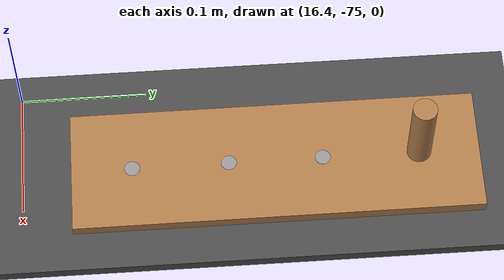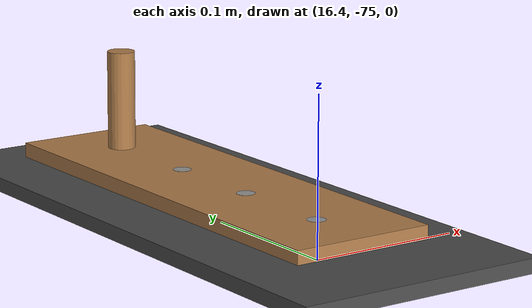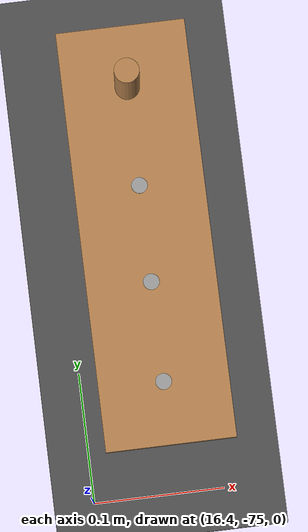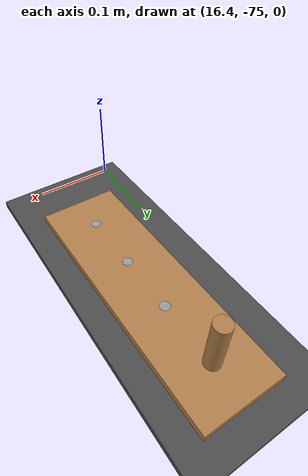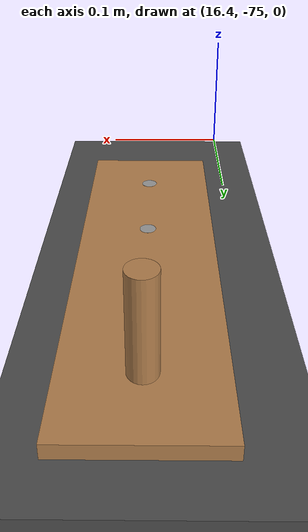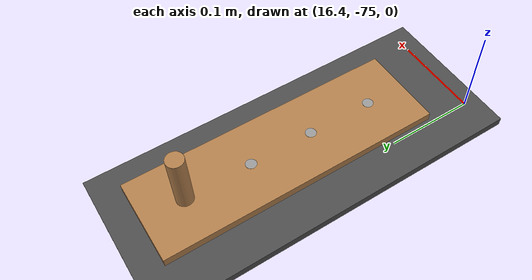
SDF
<sdf version="1.6">
 <world name="default">
  <model name="asphalt_plane">
   <static>1</static>
   <pose>1.29754 -0.433466 -0.02 0 -0 0</pose>
   <link name="link">
    <collision name="collision"><geometry><box><size>300 200 0.01</size></box></geometry></collision>
    <visual name="visual">
     <cast_shadows>0</cast_shadows>
     <geometry><box><size>300 200 0.01</size></box></geometry>
     <material>
      <script>
       <uri>model://asphalt_plane/materials/scripts</uri>
       <uri>model://asphalt_plane/materials/textures</uri>
       <name>vrc/asphalt</name>
      </script>
     </material>
    </visual>
   </link>
  </model>
  <model name="wooden_peg_board">
   <link name="wooden_board::base">
    <pose>0 0 0.00523 0 -0 0</pose>
    <inertial>
     <mass>0.2765</mass>
     <inertia>
      <ixx>0.0025148</ixx>
      <ixy>0</ixy>
      <ixz>0</ixz>
      <iyy>0.00024037</iyy>
      <iyz>0</iyz>
      <izz>0.00275013</izz>
     </inertia>
    </inertial>
    <collision name="collision">
     <geometry><box><size>0.1016 0.3302 0.01046</size></box></geometry>
     <surface>
      <contact>
       <poissons_ratio>0.347</poissons_ratio>
       <elastic_modulus>8.8e+09</elastic_modulus>
       <ode><kp>100000</kp><kd>100</kd><max_vel>100</max_vel><min_depth>0.001</min_depth></ode>
      </contact>
      <friction>
       <torsional>
        <coefficient>1</coefficient>
        <use_patch_radius>0</use_patch_radius>
        <surface_radius>0.01</surface_radius>
       </torsional>
      </friction>
     </surface>
    </collision>
    <visual name="visual">
     <geometry><box><size>0.1016 0.3302 0.01046</size></box></geometry>
     <material>
      <script><uri>file://media/materials/scripts/gazebo.material</uri><name>Gazebo/Wood</name></script>
     </material>
    </visual>
    <visual name="tee_nut_1">
     <pose>0 -0.116 0 0 -0 0</pose>
     <geometry><cylinder><radius>0.00635</radius><length>0.0105646</length></cylinder></geometry>
     <material>
      <script><uri>file://media/materials/scripts/gazebo.material</uri><name>Gazebo/Grey</name></script>
     </material>
    </visual>
    <visual name="tee_nut_2">
     <pose>0 -0.038 0 0 -0 0</pose>
     <geometry><cylinder><radius>0.00635</radius><length>0.0105646</length></cylinder></geometry>
     <material>
      <script><uri>file://media/materials/scripts/gazebo.material</uri><name>Gazebo/Grey</name></script>
     </material>
    </visual>
    <visual name="tee_nut_3">
     <pose>0 0.038 0 0 -0 0</pose>
     <geometry><cylinder><radius>0.00635</radius><length>0.0105646</length></cylinder></geometry>
     <material>
      <script><uri>file://media/materials/scripts/gazebo.material</uri><name>Gazebo/Grey</name></script>
     </material>
    </visual>
    <visual name="tee_nut_4">
     <pose>0 0.116 0 0 -0 0</pose>
     <geometry><cylinder><radius>0.00635</radius><length>0.0105646</length></cylinder></geometry>
     <material>
      <script><uri>file://media/materials/scripts/gazebo.material</uri><name>Gazebo/Grey</name></script>
     </material>
    </visual>
   </link>
   <link name="peg::link">
    <pose>0 0.116 0.04 0 -0 0</pose>
    <inertial>
     <mass>0.0175</mass>
     <inertia>
      <ixx>9.74923e-06</ixx>
      <ixy>0</ixy>
      <ixz>0</ixz>
      <iyy>9.74923e-06</iyy>
      <iyz>0</iyz>
      <izz>8.31797e-07</izz>
     </inertia>
    </inertial>
    <collision name="collision">
     <geometry><cylinder><radius>0.00975</radius><length>0.08</length></cylinder></geometry>
     <surface>
      <contact>
       <poissons_ratio>0.347</poissons_ratio>
       <elastic_modulus>8.8e+09</elastic_modulus>
       <ode><kp>100000</kp><kd>100</kd><max_vel>100</max_vel><min_depth>0.001</min_depth></ode>
      </contact>
      <friction>
       <torsional>
        <coefficient>1</coefficient>
        <use_patch_radius>0</use_patch_radius>
        <surface_radius>0.01</surface_radius>
       </torsional>
      </friction>
     </surface>
    </collision>
    <visual name="visual">
     <geometry><cylinder><radius>0.00975</radius><length>0.08</length></cylinder></geometry>
     <material>
      <script><uri>file://media/materials/scripts/gazebo.material</uri><name>Gazebo/Wood</name></script>
     </material>
    </visual>
   </link>
   <joint name="board_peg" type="revolute">
    <parent>wooden_board::base</parent>
    <child>peg::link</child>
    <axis>
     <xyz>0 0 1</xyz>
     <limit><upper>0</upper><lower>0</lower></limit>
     <use_parent_model_frame>0</use_parent_model_frame>
     <dynamics><spring_reference>0</spring_reference><spring_stiffness>0</spring_stiffness></dynamics>
    </axis>
   </joint>
   <pose>16.4641 -74.7969 -0.015451 0.003353 -7e-06 0.000613</pose>
  </model>
 </world>
</sdf>
